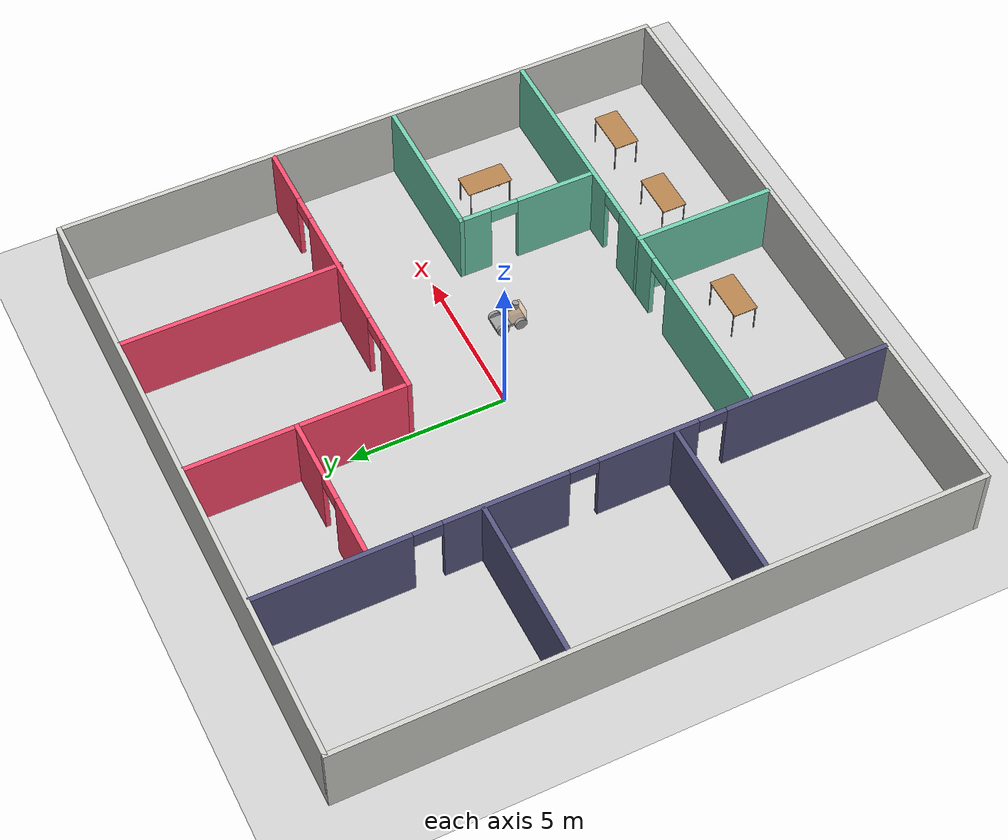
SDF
<sdf version="1.6">
 <world name="default">
  <model name="ground_plane">
   <static>1</static>
   <link name="link">
    <collision name="collision">
     <geometry><plane><normal>0 0 1</normal><size>100 100</size></plane></geometry>
     <surface>
      <contact><collide_bitmask>65535</collide_bitmask></contact>
      <friction><ode><mu>100</mu><mu2>50</mu2></ode></friction>
     </surface>
    </collision>
    <visual name="visual">
     <cast_shadows>0</cast_shadows>
     <geometry><plane><normal>0 0 1</normal><size>100 100</size></plane></geometry>
     <material>
      <script><uri>file://media/materials/scripts/gazebo.material</uri><name>Gazebo/Grey</name></script>
     </material>
    </visual>
   </link>
  </model>
  <model name="building">
   <link name="Wall_0">
    <collision name="Wall_0_Collision">
     <geometry><box><size>20.15 0.15 2.5</size></box></geometry>
     <pose>0 0 1.25 0 -0 0</pose>
    </collision>
    <visual name="Wall_0_Visual">
     <pose>0 0 1.25 0 -0 0</pose>
     <geometry><box><size>20.15 0.15 2.5</size></box></geometry>
     <material>
      <script><uri>file://media/materials/scripts/gazebo.material</uri><name>Gazebo/CeilingTiled</name></script>
      <ambient>1 1 1 1</ambient>
     </material>
     <meta><layer>0</layer></meta>
    </visual>
    <pose>0 -10 0 0 -0 0</pose>
   </link>
   <link name="Wall_11">
    <collision name="Wall_11_Collision">
     <geometry><box><size>4.55 0.15 2.5</size></box></geometry>
     <pose>0 0 1.25 0 -0 0</pose>
    </collision>
    <visual name="Wall_11_Visual">
     <pose>0 0 1.25 0 -0 0</pose>
     <geometry><box><size>4.55 0.15 2.5</size></box></geometry>
     <material>
      <script><uri>file://media/materials/scripts/gazebo.material</uri><name>Gazebo/Grey</name></script>
      <ambient>0.435294 0.796078 0.67451 1</ambient>
     </material>
     <meta><layer>0</layer></meta>
    </visual>
    <pose>2 -7.7 0 0 0 -1.5708</pose>
   </link>
   <link name="Wall_13">
    <pose>-2.35 6.5 0 0 -0 0</pose>
    <visual name="Wall_13_Visual_0">
     <pose>-1.42755 0 1.25 0 -0 0</pose>
     <geometry><box><size>1.99489 0.15 2.5</size></box></geometry>
     <material>
      <script><uri>file://media/materials/scripts/gazebo.material</uri><name>Gazebo/Grey</name></script>
      <ambient>1 0.290196 0.419608 1</ambient>
     </material>
     <meta><layer>0</layer></meta>
    </visual>
    <collision name="Wall_13_Collision_0">
     <geometry><box><size>1.99489 0.15 2.5</size></box></geometry>
     <pose>-1.42755 0 1.25 0 -0 0</pose>
    </collision>
    <visual name="Wall_13_Visual_1">
     <pose>1.44745 0 1.25 0 -0 0</pose>
     <geometry><box><size>1.95511 0.15 2.5</size></box></geometry>
     <material>
      <script><uri>file://media/materials/scripts/gazebo.material</uri><name>Gazebo/Grey</name></script>
      <ambient>1 0.290196 0.419608 1</ambient>
     </material>
     <meta><layer>0</layer></meta>
    </visual>
    <collision name="Wall_13_Collision_1">
     <geometry><box><size>1.95511 0.15 2.5</size></box></geometry>
     <pose>1.44745 0 1.25 0 -0 0</pose>
    </collision>
    <visual name="Wall_13_Visual_2">
     <pose>0.019894 0 2.25 0 -0 0</pose>
     <geometry><box><size>0.9 0.15 0.5</size></box></geometry>
     <material>
      <script><uri>file://media/materials/scripts/gazebo.material</uri><name>Gazebo/Grey</name></script>
      <ambient>1 0.290196 0.419608 1</ambient>
     </material>
     <meta><layer>0</layer></meta>
    </visual>
    <collision name="Wall_13_Collision_2">
     <geometry><box><size>0.9 0.15 0.5</size></box></geometry>
     <pose>0.019894 0 2.25 0 -0 0</pose>
    </collision>
   </link>
   <link name="Wall_19">
    <collision name="Wall_19_Collision">
     <geometry><box><size>7.05 0.15 2.5</size></box></geometry>
     <pose>0 0 1.25 0 -0 0</pose>
    </collision>
    <visual name="Wall_19_Visual">
     <pose>0 0 1.25 0 -0 0</pose>
     <geometry><box><size>7.05 0.15 2.5</size></box></geometry>
     <material>
      <script><uri>file://media/materials/scripts/gazebo.material</uri><name>Gazebo/Grey</name></script>
      <ambient>1 0.290196 0.419608 1</ambient>
     </material>
     <meta><layer>0</layer></meta>
    </visual>
    <pose>5 6.45 0 0 -0 1.5708</pose>
   </link>
   <link name="Wall_2">
    <collision name="Wall_2_Collision">
     <geometry><box><size>20.15 0.15 2.5</size></box></geometry>
     <pose>0 0 1.25 0 -0 0</pose>
    </collision>
    <visual name="Wall_2_Visual">
     <pose>0 0 1.25 0 -0 0</pose>
     <geometry><box><size>20.15 0.15 2.5</size></box></geometry>
     <material>
      <script><uri>file://media/materials/scripts/gazebo.material</uri><name>Gazebo/CeilingTiled</name></script>
      <ambient>1 1 1 1</ambient>
     </material>
     <meta><layer>0</layer></meta>
    </visual>
    <pose>-10 0 0 0 -0 1.5708</pose>
   </link>
   <link name="Wall_21">
    <collision name="Wall_21_Collision">
     <geometry><box><size>5.15 0.15 2.5</size></box></geometry>
     <pose>0 0 1.25 0 -0 0</pose>
    </collision>
    <visual name="Wall_21_Visual">
     <pose>0 0 1.25 0 -0 0</pose>
     <geometry><box><size>5.15 0.15 2.5</size></box></geometry>
     <material>
      <script><uri>file://media/materials/scripts/gazebo.material</uri><name>Gazebo/Grey</name></script>
      <ambient>0.333333 0.333333 0.498039 1</ambient>
     </material>
     <meta><layer>0</layer></meta>
    </visual>
    <pose>-7.4 3 0 0 -0 3.14159</pose>
   </link>
   <link name="Wall_23">
    <collision name="Wall_23_Collision">
     <geometry><box><size>6.95695 0.15 2.5</size></box></geometry>
     <pose>0 0 1.25 0 -0 0</pose>
    </collision>
    <visual name="Wall_23_Visual">
     <pose>0 0 1.25 0 -0 0</pose>
     <geometry><box><size>6.95695 0.15 2.5</size></box></geometry>
     <material>
      <script><uri>file://media/materials/scripts/gazebo.material</uri><name>Gazebo/Grey</name></script>
      <ambient>1 0.290196 0.419608 1</ambient>
     </material>
     <meta><layer>0</layer></meta>
    </visual>
    <pose>0 6.49652 0 0 -0 1.5708</pose>
   </link>
   <link name="Wall_25">
    <pose>4.95 3.04652 0 0 -0 0</pose>
    <visual name="Wall_25_Visual_0">
     <pose>-4.07462 0 1.25 0 -0 0</pose>
     <geometry><box><size>1.90076 0.15 2.5</size></box></geometry>
     <material>
      <script><uri>file://media/materials/scripts/gazebo.material</uri><name>Gazebo/Grey</name></script>
      <ambient>1 0.290196 0.419608 1</ambient>
     </material>
     <meta><layer>0</layer></meta>
    </visual>
    <collision name="Wall_25_Collision_0">
     <geometry><box><size>1.90076 0.15 2.5</size></box></geometry>
     <pose>-4.07462 0 1.25 0 -0 0</pose>
    </collision>
    <visual name="Wall_25_Visual_1">
     <pose>-0.045637 0 1.25 0 -0 0</pose>
     <geometry><box><size>4.3572 0.15 2.5</size></box></geometry>
     <material>
      <script><uri>file://media/materials/scripts/gazebo.material</uri><name>Gazebo/Grey</name></script>
      <ambient>1 0.290196 0.419608 1</ambient>
     </material>
     <meta><layer>0</layer></meta>
    </visual>
    <collision name="Wall_25_Collision_1">
     <geometry><box><size>4.3572 0.15 2.5</size></box></geometry>
     <pose>-0.045637 0 1.25 0 -0 0</pose>
    </collision>
    <visual name="Wall_25_Visual_2">
     <pose>4.02898 0 1.25 0 -0 0</pose>
     <geometry><box><size>1.99204 0.15 2.5</size></box></geometry>
     <material>
      <script><uri>file://media/materials/scripts/gazebo.material</uri><name>Gazebo/Grey</name></script>
      <ambient>1 0.290196 0.419608 1</ambient>
     </material>
     <meta><layer>0</layer></meta>
    </visual>
    <collision name="Wall_25_Collision_2">
     <geometry><box><size>1.99204 0.15 2.5</size></box></geometry>
     <pose>4.02898 0 1.25 0 -0 0</pose>
    </collision>
    <visual name="Wall_25_Visual_3">
     <pose>-2.67424 0 2.25 0 -0 0</pose>
     <geometry><box><size>0.9 0.15 0.5</size></box></geometry>
     <material>
      <script><uri>file://media/materials/scripts/gazebo.material</uri><name>Gazebo/Grey</name></script>
      <ambient>1 0.290196 0.419608 1</ambient>
     </material>
     <meta><layer>0</layer></meta>
    </visual>
    <collision name="Wall_25_Collision_3">
     <geometry><box><size>0.9 0.15 0.5</size></box></geometry>
     <pose>-2.67424 0 2.25 0 -0 0</pose>
    </collision>
    <visual name="Wall_25_Visual_4">
     <pose>2.58296 0 2.25 0 -0 0</pose>
     <geometry><box><size>0.9 0.15 0.5</size></box></geometry>
     <material>
      <script><uri>file://media/materials/scripts/gazebo.material</uri><name>Gazebo/Grey</name></script>
      <ambient>1 0.290196 0.419608 1</ambient>
     </material>
     <meta><layer>0</layer></meta>
    </visual>
    <collision name="Wall_25_Collision_4">
     <geometry><box><size>0.9 0.15 0.5</size></box></geometry>
     <pose>2.58296 0 2.25 0 -0 0</pose>
    </collision>
   </link>
   <link name="Wall_27">
    <pose>5 -3.25 0 0 0 -1.5708</pose>
    <visual name="Wall_27_Visual_0">
     <pose>-1.79644 0 1.25 0 -0 0</pose>
     <geometry><box><size>1.05711 0.15 2.5</size></box></geometry>
     <material>
      <script><uri>file://media/materials/scripts/gazebo.material</uri><name>Gazebo/Grey</name></script>
      <ambient>0.435294 0.796078 0.67451 1</ambient>
     </material>
     <meta><layer>0</layer></meta>
    </visual>
    <collision name="Wall_27_Collision_0">
     <geometry><box><size>1.05711 0.15 2.5</size></box></geometry>
     <pose>-1.79644 0 1.25 0 -0 0</pose>
    </collision>
    <visual name="Wall_27_Visual_1">
     <pose>0.978556 0 1.25 0 -0 0</pose>
     <geometry><box><size>2.69289 0.15 2.5</size></box></geometry>
     <material>
      <script><uri>file://media/materials/scripts/gazebo.material</uri><name>Gazebo/Grey</name></script>
      <ambient>0.435294 0.796078 0.67451 1</ambient>
     </material>
     <meta><layer>0</layer></meta>
    </visual>
    <collision name="Wall_27_Collision_1">
     <geometry><box><size>2.69289 0.15 2.5</size></box></geometry>
     <pose>0.978556 0 1.25 0 -0 0</pose>
    </collision>
    <visual name="Wall_27_Visual_2">
     <pose>-0.817888 0 2.25 0 -0 0</pose>
     <geometry><box><size>0.9 0.15 0.5</size></box></geometry>
     <material>
      <script><uri>file://media/materials/scripts/gazebo.material</uri><name>Gazebo/Grey</name></script>
      <ambient>0.435294 0.796078 0.67451 1</ambient>
     </material>
     <meta><layer>0</layer></meta>
    </visual>
    <collision name="Wall_27_Collision_2">
     <geometry><box><size>0.9 0.15 0.5</size></box></geometry>
     <pose>-0.817888 0 2.25 0 -0 0</pose>
    </collision>
   </link>
   <link name="Wall_29">
    <collision name="Wall_29_Collision">
     <geometry><box><size>5.05 0.15 2.5</size></box></geometry>
     <pose>0 0 1.25 0 -0 0</pose>
    </collision>
    <visual name="Wall_29_Visual">
     <pose>0 0 1.25 0 -0 0</pose>
     <geometry><box><size>5.05 0.15 2.5</size></box></geometry>
     <material>
      <script><uri>file://media/materials/scripts/gazebo.material</uri><name>Gazebo/Grey</name></script>
      <ambient>0.435294 0.796078 0.67451 1</ambient>
     </material>
     <meta><layer>0</layer></meta>
    </visual>
    <pose>7.45 -1 0 0 -0 0</pose>
   </link>
   <link name="Wall_3">
    <collision name="Wall_3_Collision">
     <geometry><box><size>20.15 0.15 2.5</size></box></geometry>
     <pose>0 0 1.25 0 -0 0</pose>
    </collision>
    <visual name="Wall_3_Visual">
     <pose>0 0 1.25 0 -0 0</pose>
     <geometry><box><size>20.15 0.15 2.5</size></box></geometry>
     <material>
      <script><uri>file://media/materials/scripts/gazebo.material</uri><name>Gazebo/CeilingTiled</name></script>
      <ambient>1 1 1 1</ambient>
     </material>
     <meta><layer>0</layer></meta>
    </visual>
    <pose>0 10 0 0 -0 0</pose>
   </link>
   <link name="Wall_31">
    <collision name="Wall_31_Collision">
     <geometry><box><size>5.15 0.15 2.5</size></box></geometry>
     <pose>0 0 1.25 0 -0 0</pose>
    </collision>
    <visual name="Wall_31_Visual">
     <pose>0 0 1.25 0 -0 0</pose>
     <geometry><box><size>5.15 0.15 2.5</size></box></geometry>
     <material>
      <script><uri>file://media/materials/scripts/gazebo.material</uri><name>Gazebo/Grey</name></script>
      <ambient>0.333333 0.333333 0.498039 1</ambient>
     </material>
     <meta><layer>0</layer></meta>
    </visual>
    <pose>-7.4 -3 0 0 -0 3.14159</pose>
   </link>
   <link name="Wall_4">
    <collision name="Wall_4_Collision">
     <geometry><box><size>20.15 0.15 2.5</size></box></geometry>
     <pose>0 0 1.25 0 -0 0</pose>
    </collision>
    <visual name="Wall_4_Visual">
     <pose>0 0 1.25 0 -0 0</pose>
     <geometry><box><size>20.15 0.15 2.5</size></box></geometry>
     <material>
      <script><uri>file://media/materials/scripts/gazebo.material</uri><name>Gazebo/CeilingTiled</name></script>
      <ambient>1 1 1 1</ambient>
     </material>
     <meta><layer>0</layer></meta>
    </visual>
    <pose>10 0 0 0 0 -1.5708</pose>
   </link>
   <link name="Wall_6">
    <pose>-4.8 0 0 0 -0 1.5708</pose>
    <visual name="Wall_6_Visual_0">
     <pose>-7.31251 0 1.25 0 -0 0</pose>
     <geometry><box><size>5.32498 0.15 2.5</size></box></geometry>
     <material>
      <script><uri>file://media/materials/scripts/gazebo.material</uri><name>Gazebo/Grey</name></script>
      <ambient>0.333333 0.333333 0.498039 1</ambient>
     </material>
     <meta><layer>0</layer></meta>
    </visual>
    <collision name="Wall_6_Collision_0">
     <geometry><box><size>5.32498 0.15 2.5</size></box></geometry>
     <pose>-7.31251 0 1.25 0 -0 0</pose>
    </collision>
    <visual name="Wall_6_Visual_1">
     <pose>-2.15297 0 1.25 0 -0 0</pose>
     <geometry><box><size>3.1941 0.15 2.5</size></box></geometry>
     <material>
      <script><uri>file://media/materials/scripts/gazebo.material</uri><name>Gazebo/Grey</name></script>
      <ambient>0.333333 0.333333 0.498039 1</ambient>
     </material>
     <meta><layer>0</layer></meta>
    </visual>
    <collision name="Wall_6_Collision_1">
     <geometry><box><size>3.1941 0.15 2.5</size></box></geometry>
     <pose>-2.15297 0 1.25 0 -0 0</pose>
    </collision>
    <visual name="Wall_6_Visual_2">
     <pose>2.29006 0 1.25 0 -0 0</pose>
     <geometry><box><size>3.89196 0.15 2.5</size></box></geometry>
     <material>
      <script><uri>file://media/materials/scripts/gazebo.material</uri><name>Gazebo/Grey</name></script>
      <ambient>0.333333 0.333333 0.498039 1</ambient>
     </material>
     <meta><layer>0</layer></meta>
    </visual>
    <collision name="Wall_6_Collision_2">
     <geometry><box><size>3.89196 0.15 2.5</size></box></geometry>
     <pose>2.29006 0 1.25 0 -0 0</pose>
    </collision>
    <visual name="Wall_6_Visual_3">
     <pose>7.55552 0 1.25 0 -0 0</pose>
     <geometry><box><size>4.83895 0.15 2.5</size></box></geometry>
     <material>
      <script><uri>file://media/materials/scripts/gazebo.material</uri><name>Gazebo/Grey</name></script>
      <ambient>0.333333 0.333333 0.498039 1</ambient>
     </material>
     <meta><layer>0</layer></meta>
    </visual>
    <collision name="Wall_6_Collision_3">
     <geometry><box><size>4.83895 0.15 2.5</size></box></geometry>
     <pose>7.55552 0 1.25 0 -0 0</pose>
    </collision>
    <visual name="Wall_6_Visual_4">
     <pose>-4.20002 0 2.25 0 -0 0</pose>
     <geometry><box><size>0.9 0.15 0.5</size></box></geometry>
     <material>
      <script><uri>file://media/materials/scripts/gazebo.material</uri><name>Gazebo/Grey</name></script>
      <ambient>0.333333 0.333333 0.498039 1</ambient>
     </material>
     <meta><layer>0</layer></meta>
    </visual>
    <collision name="Wall_6_Collision_4">
     <geometry><box><size>0.9 0.15 0.5</size></box></geometry>
     <pose>-4.20002 0 2.25 0 -0 0</pose>
    </collision>
    <visual name="Wall_6_Visual_5">
     <pose>-0.105917 0 2.25 0 -0 0</pose>
     <geometry><box><size>0.9 0.15 0.5</size></box></geometry>
     <material>
      <script><uri>file://media/materials/scripts/gazebo.material</uri><name>Gazebo/Grey</name></script>
      <ambient>0.333333 0.333333 0.498039 1</ambient>
     </material>
     <meta><layer>0</layer></meta>
    </visual>
    <collision name="Wall_6_Collision_5">
     <geometry><box><size>0.9 0.15 0.5</size></box></geometry>
     <pose>-0.105917 0 2.25 0 -0 0</pose>
    </collision>
    <visual name="Wall_6_Visual_6">
     <pose>4.68605 0 2.25 0 -0 0</pose>
     <geometry><box><size>0.9 0.15 0.5</size></box></geometry>
     <material>
      <script><uri>file://media/materials/scripts/gazebo.material</uri><name>Gazebo/Grey</name></script>
      <ambient>0.333333 0.333333 0.498039 1</ambient>
     </material>
     <meta><layer>0</layer></meta>
    </visual>
    <collision name="Wall_6_Collision_6">
     <geometry><box><size>0.9 0.15 0.5</size></box></geometry>
     <pose>4.68605 0 2.25 0 -0 0</pose>
    </collision>
   </link>
   <link name="Wall_8">
    <pose>2.6 -5.5 0 0 -0 0</pose>
    <visual name="Wall_8_Visual_0">
     <pose>-4.88879 0 1.25 0 -0 0</pose>
     <geometry><box><size>4.97243 0.15 2.5</size></box></geometry>
     <material>
      <script><uri>file://media/materials/scripts/gazebo.material</uri><name>Gazebo/Grey</name></script>
      <ambient>0.435294 0.796078 0.67451 1</ambient>
     </material>
     <meta><layer>0</layer></meta>
    </visual>
    <collision name="Wall_8_Collision_0">
     <geometry><box><size>4.97243 0.15 2.5</size></box></geometry>
     <pose>-4.88879 0 1.25 0 -0 0</pose>
    </collision>
    <visual name="Wall_8_Visual_1">
     <pose>-0.46381 0 1.25 0 -0 0</pose>
     <geometry><box><size>2.07753 0.15 2.5</size></box></geometry>
     <material>
      <script><uri>file://media/materials/scripts/gazebo.material</uri><name>Gazebo/Grey</name></script>
      <ambient>0.435294 0.796078 0.67451 1</ambient>
     </material>
     <meta><layer>0</layer></meta>
    </visual>
    <collision name="Wall_8_Collision_1">
     <geometry><box><size>2.07753 0.15 2.5</size></box></geometry>
     <pose>-0.46381 0 1.25 0 -0 0</pose>
    </collision>
    <visual name="Wall_8_Visual_2">
     <pose>4.42498 0 1.25 0 -0 0</pose>
     <geometry><box><size>5.90005 0.15 2.5</size></box></geometry>
     <material>
      <script><uri>file://media/materials/scripts/gazebo.material</uri><name>Gazebo/Grey</name></script>
      <ambient>0.435294 0.796078 0.67451 1</ambient>
     </material>
     <meta><layer>0</layer></meta>
    </visual>
    <collision name="Wall_8_Collision_2">
     <geometry><box><size>5.90005 0.15 2.5</size></box></geometry>
     <pose>4.42498 0 1.25 0 -0 0</pose>
    </collision>
    <visual name="Wall_8_Visual_3">
     <pose>-1.95257 0 2.25 0 -0 0</pose>
     <geometry><box><size>0.9 0.15 0.5</size></box></geometry>
     <material>
      <script><uri>file://media/materials/scripts/gazebo.material</uri><name>Gazebo/Grey</name></script>
      <ambient>0.435294 0.796078 0.67451 1</ambient>
     </material>
     <meta><layer>0</layer></meta>
    </visual>
    <collision name="Wall_8_Collision_3">
     <geometry><box><size>0.9 0.15 0.5</size></box></geometry>
     <pose>-1.95257 0 2.25 0 -0 0</pose>
    </collision>
    <visual name="Wall_8_Visual_4">
     <pose>1.02496 0 2.25 0 -0 0</pose>
     <geometry><box><size>0.9 0.15 0.5</size></box></geometry>
     <material>
      <script><uri>file://media/materials/scripts/gazebo.material</uri><name>Gazebo/Grey</name></script>
      <ambient>0.435294 0.796078 0.67451 1</ambient>
     </material>
     <meta><layer>0</layer></meta>
    </visual>
    <collision name="Wall_8_Collision_4">
     <geometry><box><size>0.9 0.15 0.5</size></box></geometry>
     <pose>1.02496 0 2.25 0 -0 0</pose>
    </collision>
   </link>
   <static>1</static>
  </model>
  <model name="table_clone">
   <static>1</static>
   <link name="link">
    <collision name="surface">
     <pose>0 0 1 0 -0 0</pose>
     <geometry><box><size>1.5 0.8 0.03</size></box></geometry>
     <surface><friction><ode><mu>0.6</mu><mu2>0.6</mu2></ode></friction></surface>
    </collision>
    <visual name="visual1">
     <pose>0 0 1 0 -0 0</pose>
     <geometry><box><size>1.5 0.8 0.03</size></box></geometry>
     <material>
      <script><uri>file://media/materials/scripts/gazebo.material</uri><name>Gazebo/Wood</name></script>
     </material>
    </visual>
    <collision name="front_left_leg">
     <pose>0.68 0.38 0.5 0 -0 0</pose>
     <geometry><cylinder><radius>0.02</radius><length>1</length></cylinder></geometry>
    </collision>
    <visual name="front_left_leg">
     <pose>0.68 0.38 0.5 0 -0 0</pose>
     <geometry><cylinder><radius>0.02</radius><length>1</length></cylinder></geometry>
     <material>
      <script><uri>file://media/materials/scripts/gazebo.material</uri><name>Gazebo/Grey</name></script>
     </material>
    </visual>
    <collision name="front_right_leg">
     <pose>0.68 -0.38 0.5 0 -0 0</pose>
     <geometry><cylinder><radius>0.02</radius><length>1</length></cylinder></geometry>
    </collision>
    <visual name="front_right_leg">
     <pose>0.68 -0.38 0.5 0 -0 0</pose>
     <geometry><cylinder><radius>0.02</radius><length>1</length></cylinder></geometry>
     <material>
      <script><uri>file://media/materials/scripts/gazebo.material</uri><name>Gazebo/Grey</name></script>
     </material>
    </visual>
    <collision name="back_right_leg">
     <pose>-0.68 -0.38 0.5 0 -0 0</pose>
     <geometry><cylinder><radius>0.02</radius><length>1</length></cylinder></geometry>
    </collision>
    <visual name="back_right_leg">
     <pose>-0.68 -0.38 0.5 0 -0 0</pose>
     <geometry><cylinder><radius>0.02</radius><length>1</length></cylinder></geometry>
     <material>
      <script><uri>file://media/materials/scripts/gazebo.material</uri><name>Gazebo/Grey</name></script>
     </material>
    </visual>
    <collision name="back_left_leg">
     <pose>-0.68 0.38 0.5 0 -0 0</pose>
     <geometry><cylinder><radius>0.02</radius><length>1</length></cylinder></geometry>
    </collision>
    <visual name="back_left_leg">
     <pose>-0.68 0.38 0.5 0 -0 0</pose>
     <geometry><cylinder><radius>0.02</radius><length>1</length></cylinder></geometry>
     <material>
      <script><uri>file://media/materials/scripts/gazebo.material</uri><name>Gazebo/Grey</name></script>
     </material>
    </visual>
   </link>
   <pose>-0.143006 -7.64818 0 0 -0 0</pose>
  </model>
  <model name="table_clone_0">
   <static>1</static>
   <link name="link">
    <collision name="surface">
     <pose>0 0 1 0 -0 0</pose>
     <geometry><box><size>1.5 0.8 0.03</size></box></geometry>
     <surface><friction><ode><mu>0.6</mu><mu2>0.6</mu2></ode></friction></surface>
    </collision>
    <visual name="visual1">
     <pose>0 0 1 0 -0 0</pose>
     <geometry><box><size>1.5 0.8 0.03</size></box></geometry>
     <material>
      <script><uri>file://media/materials/scripts/gazebo.material</uri><name>Gazebo/Wood</name></script>
     </material>
    </visual>
    <collision name="front_left_leg">
     <pose>0.68 0.38 0.5 0 -0 0</pose>
     <geometry><cylinder><radius>0.02</radius><length>1</length></cylinder></geometry>
    </collision>
    <visual name="front_left_leg">
     <pose>0.68 0.38 0.5 0 -0 0</pose>
     <geometry><cylinder><radius>0.02</radius><length>1</length></cylinder></geometry>
     <material>
      <script><uri>file://media/materials/scripts/gazebo.material</uri><name>Gazebo/Grey</name></script>
     </material>
    </visual>
    <collision name="front_right_leg">
     <pose>0.68 -0.38 0.5 0 -0 0</pose>
     <geometry><cylinder><radius>0.02</radius><length>1</length></cylinder></geometry>
    </collision>
    <visual name="front_right_leg">
     <pose>0.68 -0.38 0.5 0 -0 0</pose>
     <geometry><cylinder><radius>0.02</radius><length>1</length></cylinder></geometry>
     <material>
      <script><uri>file://media/materials/scripts/gazebo.material</uri><name>Gazebo/Grey</name></script>
     </material>
    </visual>
    <collision name="back_right_leg">
     <pose>-0.68 -0.38 0.5 0 -0 0</pose>
     <geometry><cylinder><radius>0.02</radius><length>1</length></cylinder></geometry>
    </collision>
    <visual name="back_right_leg">
     <pose>-0.68 -0.38 0.5 0 -0 0</pose>
     <geometry><cylinder><radius>0.02</radius><length>1</length></cylinder></geometry>
     <material>
      <script><uri>file://media/materials/scripts/gazebo.material</uri><name>Gazebo/Grey</name></script>
     </material>
    </visual>
    <collision name="back_left_leg">
     <pose>-0.68 0.38 0.5 0 -0 0</pose>
     <geometry><cylinder><radius>0.02</radius><length>1</length></cylinder></geometry>
    </collision>
    <visual name="back_left_leg">
     <pose>-0.68 0.38 0.5 0 -0 0</pose>
     <geometry><cylinder><radius>0.02</radius><length>1</length></cylinder></geometry>
     <material>
      <script><uri>file://media/materials/scripts/gazebo.material</uri><name>Gazebo/Grey</name></script>
     </material>
    </visual>
   </link>
   <pose>4.49827 -7.74923 0 0 -0 0</pose>
  </model>
  <model name="table_clone_1">
   <static>1</static>
   <link name="link">
    <collision name="surface">
     <pose>0 0 1 0 -0 0</pose>
     <geometry><box><size>1.5 0.8 0.03</size></box></geometry>
     <surface><friction><ode><mu>0.6</mu><mu2>0.6</mu2></ode></friction></surface>
    </collision>
    <visual name="visual1">
     <pose>0 0 1 0 -0 0</pose>
     <geometry><box><size>1.5 0.8 0.03</size></box></geometry>
     <material>
      <script><uri>file://media/materials/scripts/gazebo.material</uri><name>Gazebo/Wood</name></script>
     </material>
    </visual>
    <collision name="front_left_leg">
     <pose>0.68 0.38 0.5 0 -0 0</pose>
     <geometry><cylinder><radius>0.02</radius><length>1</length></cylinder></geometry>
    </collision>
    <visual name="front_left_leg">
     <pose>0.68 0.38 0.5 0 -0 0</pose>
     <geometry><cylinder><radius>0.02</radius><length>1</length></cylinder></geometry>
     <material>
      <script><uri>file://media/materials/scripts/gazebo.material</uri><name>Gazebo/Grey</name></script>
     </material>
    </visual>
    <collision name="front_right_leg">
     <pose>0.68 -0.38 0.5 0 -0 0</pose>
     <geometry><cylinder><radius>0.02</radius><length>1</length></cylinder></geometry>
    </collision>
    <visual name="front_right_leg">
     <pose>0.68 -0.38 0.5 0 -0 0</pose>
     <geometry><cylinder><radius>0.02</radius><length>1</length></cylinder></geometry>
     <material>
      <script><uri>file://media/materials/scripts/gazebo.material</uri><name>Gazebo/Grey</name></script>
     </material>
    </visual>
    <collision name="back_right_leg">
     <pose>-0.68 -0.38 0.5 0 -0 0</pose>
     <geometry><cylinder><radius>0.02</radius><length>1</length></cylinder></geometry>
    </collision>
    <visual name="back_right_leg">
     <pose>-0.68 -0.38 0.5 0 -0 0</pose>
     <geometry><cylinder><radius>0.02</radius><length>1</length></cylinder></geometry>
     <material>
      <script><uri>file://media/materials/scripts/gazebo.material</uri><name>Gazebo/Grey</name></script>
     </material>
    </visual>
    <collision name="back_left_leg">
     <pose>-0.68 0.38 0.5 0 -0 0</pose>
     <geometry><cylinder><radius>0.02</radius><length>1</length></cylinder></geometry>
    </collision>
    <visual name="back_left_leg">
     <pose>-0.68 0.38 0.5 0 -0 0</pose>
     <geometry><cylinder><radius>0.02</radius><length>1</length></cylinder></geometry>
     <material>
      <script><uri>file://media/materials/scripts/gazebo.material</uri><name>Gazebo/Grey</name></script>
     </material>
    </visual>
   </link>
   <pose>7.56621 -7.70233 0 0 -0 0</pose>
  </model>
  <model name="table_clone_4_clone_0">
   <static>1</static>
   <link name="link">
    <collision name="surface">
     <pose>0 0 1 0 -0 0</pose>
     <geometry><box><size>1.5 0.8 0.03</size></box></geometry>
     <surface><friction><ode><mu>0.6</mu><mu2>0.6</mu2></ode></friction></surface>
    </collision>
    <visual name="visual1">
     <pose>0 0 1 0 -0 0</pose>
     <geometry><box><size>1.5 0.8 0.03</size></box></geometry>
     <material>
      <script><uri>file://media/materials/scripts/gazebo.material</uri><name>Gazebo/Wood</name></script>
     </material>
    </visual>
    <collision name="front_left_leg">
     <pose>0.68 0.38 0.5 0 -0 0</pose>
     <geometry><cylinder><radius>0.02</radius><length>1</length></cylinder></geometry>
    </collision>
    <visual name="front_left_leg">
     <pose>0.68 0.38 0.5 0 -0 0</pose>
     <geometry><cylinder><radius>0.02</radius><length>1</length></cylinder></geometry>
     <material>
      <script><uri>file://media/materials/scripts/gazebo.material</uri><name>Gazebo/Grey</name></script>
     </material>
    </visual>
    <collision name="front_right_leg">
     <pose>0.68 -0.38 0.5 0 -0 0</pose>
     <geometry><cylinder><radius>0.02</radius><length>1</length></cylinder></geometry>
    </collision>
    <visual name="front_right_leg">
     <pose>0.68 -0.38 0.5 0 -0 0</pose>
     <geometry><cylinder><radius>0.02</radius><length>1</length></cylinder></geometry>
     <material>
      <script><uri>file://media/materials/scripts/gazebo.material</uri><name>Gazebo/Grey</name></script>
     </material>
    </visual>
    <collision name="back_right_leg">
     <pose>-0.68 -0.38 0.5 0 -0 0</pose>
     <geometry><cylinder><radius>0.02</radius><length>1</length></cylinder></geometry>
    </collision>
    <visual name="back_right_leg">
     <pose>-0.68 -0.38 0.5 0 -0 0</pose>
     <geometry><cylinder><radius>0.02</radius><length>1</length></cylinder></geometry>
     <material>
      <script><uri>file://media/materials/scripts/gazebo.material</uri><name>Gazebo/Grey</name></script>
     </material>
    </visual>
    <collision name="back_left_leg">
     <pose>-0.68 0.38 0.5 0 -0 0</pose>
     <geometry><cylinder><radius>0.02</radius><length>1</length></cylinder></geometry>
    </collision>
    <visual name="back_left_leg">
     <pose>-0.68 0.38 0.5 0 -0 0</pose>
     <geometry><cylinder><radius>0.02</radius><length>1</length></cylinder></geometry>
     <material>
      <script><uri>file://media/materials/scripts/gazebo.material</uri><name>Gazebo/Grey</name></script>
     </material>
    </visual>
   </link>
   <pose>7.45404 -2.98154 0 0 -0 1.5707</pose>
  </model>
  <model name="robot_0">
   <link name="link_1">
    <pose>0.074286 0.002857 -0.114286 0 -0 0</pose>
    <inertial>
     <mass>1</mass>
     <inertia>
      <ixx>0.166667</ixx>
      <ixy>0</ixy>
      <ixz>0</ixz>
      <iyy>0.166667</iyy>
      <iyz>0</iyz>
      <izz>0.166667</izz>
     </inertia>
    </inertial>
    <visual name="visual">
     <geometry><box><size>1 0.5 0.1</size></box></geometry>
     <material>
      <lighting>1</lighting>
      <script><uri>file://media/materials/scripts/gazebo.material</uri><name>Gazebo/Grey</name></script>
      <shader type="pixel"><normal_map>__default__</normal_map></shader>
      <ambient>0 0 0 0.1</ambient>
      <diffuse>0.7 0.7 0.7 1</diffuse>
      <specular>0.01 0.01 1 1</specular>
      <emissive>0 0 0 1</emissive>
     </material>
    </visual>
    <collision name="collision">
     <geometry><box><size>1 0.5 0.1</size></box></geometry>
     <surface>
      <friction>
       <ode><mu>1</mu><mu2>1</mu2><fdir1>0 0 0</fdir1><slip1>0</slip1><slip2>0</slip2></ode>
       <torsional>
        <coefficient>1</coefficient>
        <patch_radius>0</patch_radius>
        <surface_radius>0</surface_radius>
        <use_patch_radius>1</use_patch_radius>
        <ode><slip>0</slip></ode>
       </torsional>
      </friction>
      <bounce><restitution_coefficient>0</restitution_coefficient><threshold>1e+06</threshold></bounce>
      <contact>
       <collide_without_contact>0</collide_without_contact>
       <collide_without_contact_bitmask>1</collide_without_contact_bitmask>
       <collide_bitmask>1</collide_bitmask>
       <ode>
        <soft_cfm>0</soft_cfm>
        <soft_erp>0.2</soft_erp>
        <kp>1e+13</kp>
        <kd>1</kd>
        <max_vel>0.01</max_vel>
        <min_depth>0</min_depth>
       </ode>
       <bullet>
        <split_impulse>1</split_impulse>
        <split_impulse_penetration_threshold>-0.01</split_impulse_penetration_threshold>
        <soft_cfm>0</soft_cfm>
        <soft_erp>0.2</soft_erp>
        <kp>1e+13</kp>
        <kd>1</kd>
       </bullet>
      </contact>
     </surface>
    </collision>
   </link>
   <link name="link_5">
    <pose>-0.225714 -0.297162 -0.114286 1.5707 -0 0</pose>
    <inertial>
     <mass>1</mass>
     <inertia><ixx>0.145833</ixx><ixy>0</ixy><ixz>0</ixz><iyy>0.145833</iyy><iyz>0</iyz><izz>0.125</izz></inertia>
    </inertial>
    <visual name="visual">
     <geometry><cylinder><radius>0.2</radius><length>0.1</length></cylinder></geometry>
     <material>
      <lighting>1</lighting>
      <script><uri>file://media/materials/scripts/gazebo.material</uri><name>Gazebo/Grey</name></script>
      <shader type="pixel"><normal_map>__default__</normal_map></shader>
      <ambient>0 0 0 0.5</ambient>
      <diffuse>0.7 0.7 0.7 1</diffuse>
      <specular>0.01 0.01 0.01 1</specular>
      <emissive>0 0 0 1</emissive>
     </material>
    </visual>
    <collision name="collision">
     <geometry><cylinder><radius>0.2</radius><length>0.1</length></cylinder></geometry>
     <surface>
      <friction>
       <ode><mu>1</mu><mu2>1</mu2><fdir1>0 0 0</fdir1><slip1>0</slip1><slip2>0</slip2></ode>
       <torsional>
        <coefficient>1</coefficient>
        <patch_radius>0</patch_radius>
        <surface_radius>0</surface_radius>
        <use_patch_radius>1</use_patch_radius>
        <ode><slip>0</slip></ode>
       </torsional>
      </friction>
      <bounce><restitution_coefficient>0</restitution_coefficient><threshold>1e+06</threshold></bounce>
      <contact>
       <collide_without_contact>0</collide_without_contact>
       <collide_without_contact_bitmask>1</collide_without_contact_bitmask>
       <collide_bitmask>1</collide_bitmask>
       <ode>
        <soft_cfm>0</soft_cfm>
        <soft_erp>0.2</soft_erp>
        <kp>1e+13</kp>
        <kd>1</kd>
        <max_vel>0.01</max_vel>
        <min_depth>0</min_depth>
       </ode>
       <bullet>
        <split_impulse>1</split_impulse>
        <split_impulse_penetration_threshold>-0.01</split_impulse_penetration_threshold>
        <soft_cfm>0</soft_cfm>
        <soft_erp>0.2</soft_erp>
        <kp>1e+13</kp>
        <kd>1</kd>
       </bullet>
      </contact>
     </surface>
    </collision>
   </link>
   <link name="link_5_clone">
    <pose>0.374286 -0.297162 -0.114286 1.5707 -0 0</pose>
    <inertial>
     <mass>1</mass>
     <inertia><ixx>0.145833</ixx><ixy>0</ixy><ixz>0</ixz><iyy>0.145833</iyy><iyz>0</iyz><izz>0.125</izz></inertia>
    </inertial>
    <visual name="visual">
     <geometry><cylinder><radius>0.2</radius><length>0.1</length></cylinder></geometry>
     <material>
      <lighting>1</lighting>
      <script><uri>file://media/materials/scripts/gazebo.material</uri><name>Gazebo/Grey</name></script>
      <shader type="pixel"><normal_map>__default__</normal_map></shader>
      <ambient>0 0 0 0.5</ambient>
      <diffuse>0.7 0.7 0.7 1</diffuse>
      <specular>0.01 0.01 0.01 1</specular>
      <emissive>0 0 0 1</emissive>
     </material>
    </visual>
    <collision name="collision">
     <geometry><cylinder><radius>0.2</radius><length>0.1</length></cylinder></geometry>
     <surface>
      <friction>
       <ode><mu>1</mu><mu2>1</mu2><fdir1>0 0 0</fdir1><slip1>0</slip1><slip2>0</slip2></ode>
       <torsional>
        <coefficient>1</coefficient>
        <patch_radius>0</patch_radius>
        <surface_radius>0</surface_radius>
        <use_patch_radius>1</use_patch_radius>
        <ode><slip>0</slip></ode>
       </torsional>
      </friction>
      <bounce><restitution_coefficient>0</restitution_coefficient><threshold>1e+06</threshold></bounce>
      <contact>
       <collide_without_contact>0</collide_without_contact>
       <collide_without_contact_bitmask>1</collide_without_contact_bitmask>
       <collide_bitmask>1</collide_bitmask>
       <ode>
        <soft_cfm>0</soft_cfm>
        <soft_erp>0.2</soft_erp>
        <kp>1e+13</kp>
        <kd>1</kd>
        <max_vel>0.01</max_vel>
        <min_depth>0</min_depth>
       </ode>
       <bullet>
        <split_impulse>1</split_impulse>
        <split_impulse_penetration_threshold>-0.01</split_impulse_penetration_threshold>
        <soft_cfm>0</soft_cfm>
        <soft_erp>0.2</soft_erp>
        <kp>1e+13</kp>
        <kd>1</kd>
       </bullet>
      </contact>
     </surface>
    </collision>
   </link>
   <link name="link_5_clone_0">
    <pose>-0.225714 0.302876 -0.114286 1.5707 -0 0</pose>
    <inertial>
     <mass>1</mass>
     <inertia><ixx>0.145833</ixx><ixy>0</ixy><ixz>0</ixz><iyy>0.145833</iyy><iyz>0</iyz><izz>0.125</izz></inertia>
    </inertial>
    <visual name="visual">
     <geometry><cylinder><radius>0.2</radius><length>0.1</length></cylinder></geometry>
     <material>
      <lighting>1</lighting>
      <script><uri>file://media/materials/scripts/gazebo.material</uri><name>Gazebo/Grey</name></script>
      <shader type="pixel"><normal_map>__default__</normal_map></shader>
      <ambient>0 0 0 0.5</ambient>
      <diffuse>0.7 0.7 0.7 1</diffuse>
      <specular>0.01 0.01 0.01 1</specular>
      <emissive>0 0 0 1</emissive>
     </material>
    </visual>
    <collision name="collision">
     <geometry><cylinder><radius>0.2</radius><length>0.1</length></cylinder></geometry>
     <surface>
      <friction>
       <ode><mu>1</mu><mu2>1</mu2><fdir1>0 0 0</fdir1><slip1>0</slip1><slip2>0</slip2></ode>
       <torsional>
        <coefficient>1</coefficient>
        <patch_radius>0</patch_radius>
        <surface_radius>0</surface_radius>
        <use_patch_radius>1</use_patch_radius>
        <ode><slip>0</slip></ode>
       </torsional>
      </friction>
      <bounce><restitution_coefficient>0</restitution_coefficient><threshold>1e+06</threshold></bounce>
      <contact>
       <collide_without_contact>0</collide_without_contact>
       <collide_without_contact_bitmask>1</collide_without_contact_bitmask>
       <collide_bitmask>1</collide_bitmask>
       <ode>
        <soft_cfm>0</soft_cfm>
        <soft_erp>0.2</soft_erp>
        <kp>1e+13</kp>
        <kd>1</kd>
        <max_vel>0.01</max_vel>
        <min_depth>0</min_depth>
       </ode>
       <bullet>
        <split_impulse>1</split_impulse>
        <split_impulse_penetration_threshold>-0.01</split_impulse_penetration_threshold>
        <soft_cfm>0</soft_cfm>
        <soft_erp>0.2</soft_erp>
        <kp>1e+13</kp>
        <kd>1</kd>
       </bullet>
      </contact>
     </surface>
    </collision>
   </link>
   <link name="link_5_clone_1">
    <pose>0.374286 0.302876 -0.114286 1.5707 -0 0</pose>
    <inertial>
     <mass>1</mass>
     <inertia><ixx>0.145833</ixx><ixy>0</ixy><ixz>0</ixz><iyy>0.145833</iyy><iyz>0</iyz><izz>0.125</izz></inertia>
    </inertial>
    <visual name="visual">
     <geometry><cylinder><radius>0.2</radius><length>0.1</length></cylinder></geometry>
     <material>
      <lighting>1</lighting>
      <script><uri>file://media/materials/scripts/gazebo.material</uri><name>Gazebo/Grey</name></script>
      <shader type="pixel"><normal_map>__default__</normal_map></shader>
      <ambient>0 0 0 0.5</ambient>
      <diffuse>0.7 0.7 0.7 1</diffuse>
      <specular>0.01 0.01 0.01 1</specular>
      <emissive>0 0 0 1</emissive>
     </material>
    </visual>
    <collision name="collision">
     <geometry><cylinder><radius>0.2</radius><length>0.1</length></cylinder></geometry>
     <surface>
      <friction>
       <ode><mu>1</mu><mu2>1</mu2><fdir1>0 0 0</fdir1><slip1>0</slip1><slip2>0</slip2></ode>
       <torsional>
        <coefficient>1</coefficient>
        <patch_radius>0</patch_radius>
        <surface_radius>0</surface_radius>
        <use_patch_radius>1</use_patch_radius>
        <ode><slip>0</slip></ode>
       </torsional>
      </friction>
      <bounce><restitution_coefficient>0</restitution_coefficient><threshold>1e+06</threshold></bounce>
      <contact>
       <collide_without_contact>0</collide_without_contact>
       <collide_without_contact_bitmask>1</collide_without_contact_bitmask>
       <collide_bitmask>1</collide_bitmask>
       <ode>
        <soft_cfm>0</soft_cfm>
        <soft_erp>0.2</soft_erp>
        <kp>1e+13</kp>
        <kd>1</kd>
        <max_vel>0.01</max_vel>
        <min_depth>0</min_depth>
       </ode>
       <bullet>
        <split_impulse>1</split_impulse>
        <split_impulse_penetration_threshold>-0.01</split_impulse_penetration_threshold>
        <soft_cfm>0</soft_cfm>
        <soft_erp>0.2</soft_erp>
        <kp>1e+13</kp>
        <kd>1</kd>
       </bullet>
      </contact>
     </surface>
    </collision>
   </link>
   <link name="link_8">
    <pose>-0.175714 0.002857 0.135714 0 -0 0</pose>
    <inertial>
     <mass>1</mass>
     <inertia>
      <ixx>0.166667</ixx>
      <ixy>0</ixy>
      <ixz>0</ixz>
      <iyy>0.166667</iyy>
      <iyz>0</iyz>
      <izz>0.166667</izz>
     </inertia>
    </inertial>
    <visual name="visual">
     <geometry><box><size>0.5 0.5 0.4</size></box></geometry>
     <material>
      <lighting>1</lighting>
      <script><uri>file://media/materials/scripts/gazebo.material</uri><name>Gazebo/Grey</name></script>
      <shader type="pixel"><normal_map>__default__</normal_map></shader>
      <ambient>1 0.5 0 0.1</ambient>
      <diffuse>0.7 0.7 0.7 1</diffuse>
      <specular>0.01 0.01 0.01 1</specular>
      <emissive>0 0 0 1</emissive>
     </material>
    </visual>
    <collision name="collision">
     <geometry><box><size>0.5 0.5 0.4</size></box></geometry>
     <surface>
      <friction>
       <ode><mu>1</mu><mu2>1</mu2><fdir1>0 0 0</fdir1><slip1>0</slip1><slip2>0</slip2></ode>
       <torsional>
        <coefficient>1</coefficient>
        <patch_radius>0</patch_radius>
        <surface_radius>0</surface_radius>
        <use_patch_radius>1</use_patch_radius>
        <ode><slip>0</slip></ode>
       </torsional>
      </friction>
      <bounce><restitution_coefficient>0</restitution_coefficient><threshold>1e+06</threshold></bounce>
      <contact>
       <collide_without_contact>0</collide_without_contact>
       <collide_without_contact_bitmask>1</collide_without_contact_bitmask>
       <collide_bitmask>1</collide_bitmask>
       <ode>
        <soft_cfm>0</soft_cfm>
        <soft_erp>0.2</soft_erp>
        <kp>1e+13</kp>
        <kd>1</kd>
        <max_vel>0.01</max_vel>
        <min_depth>0</min_depth>
       </ode>
       <bullet>
        <split_impulse>1</split_impulse>
        <split_impulse_penetration_threshold>-0.01</split_impulse_penetration_threshold>
        <soft_cfm>0</soft_cfm>
        <soft_erp>0.2</soft_erp>
        <kp>1e+13</kp>
        <kd>1</kd>
       </bullet>
      </contact>
     </surface>
    </collision>
   </link>
   <link name="link_9">
    <pose>-0.195714 -0.017143 0.435714 0 -0 0</pose>
    <inertial>
     <mass>1</mass>
     <inertia><ixx>0.145833</ixx><ixy>0</ixy><ixz>0</ixz><iyy>0.145833</iyy><iyz>0</iyz><izz>0.125</izz></inertia>
    </inertial>
    <visual name="visual">
     <geometry><cylinder><radius>0.1</radius><length>0.2</length></cylinder></geometry>
     <material>
      <lighting>1</lighting>
      <script><uri>file://media/materials/scripts/gazebo.material</uri><name>Gazebo/Grey</name></script>
      <shader type="pixel"><normal_map>__default__</normal_map></shader>
      <ambient>0.5 0.5 0.5 1</ambient>
      <diffuse>1 1 1 1</diffuse>
      <specular>0.01 0.01 0.01 1</specular>
      <emissive>0 0 0 1</emissive>
     </material>
    </visual>
    <collision name="collision">
     <geometry><cylinder><radius>0.1</radius><length>0.2</length></cylinder></geometry>
     <surface>
      <friction>
       <ode><mu>1</mu><mu2>1</mu2><fdir1>0 0 0</fdir1><slip1>0</slip1><slip2>0</slip2></ode>
       <torsional>
        <coefficient>1</coefficient>
        <patch_radius>0</patch_radius>
        <surface_radius>0</surface_radius>
        <use_patch_radius>1</use_patch_radius>
        <ode><slip>0</slip></ode>
       </torsional>
      </friction>
      <bounce><restitution_coefficient>0</restitution_coefficient><threshold>1e+06</threshold></bounce>
      <contact>
       <collide_without_contact>0</collide_without_contact>
       <collide_without_contact_bitmask>1</collide_without_contact_bitmask>
       <collide_bitmask>1</collide_bitmask>
       <ode>
        <soft_cfm>0</soft_cfm>
        <soft_erp>0.2</soft_erp>
        <kp>1e+13</kp>
        <kd>1</kd>
        <max_vel>0.01</max_vel>
        <min_depth>0</min_depth>
       </ode>
       <bullet>
        <split_impulse>1</split_impulse>
        <split_impulse_penetration_threshold>-0.01</split_impulse_penetration_threshold>
        <soft_cfm>0</soft_cfm>
        <soft_erp>0.2</soft_erp>
        <kp>1e+13</kp>
        <kd>1</kd>
       </bullet>
      </contact>
     </surface>
    </collision>
   </link>
   <joint name="link_1_JOINT_3" type="revolute">
    <parent>link_1</parent>
    <child>link_5</child>
    <axis>
     <xyz>0 0 1</xyz>
     <use_parent_model_frame>0</use_parent_model_frame>
     <limit>
      <lower>-1.79769e+308</lower>
      <upper>1.79769e+308</upper>
      <effort>-1</effort>
      <velocity>-1</velocity>
     </limit>
     <dynamics>
      <spring_reference>0</spring_reference>
      <spring_stiffness>0</spring_stiffness>
      <damping>0</damping>
      <friction>0</friction>
     </dynamics>
    </axis>
    <physics>
     <ode><limit><cfm>0</cfm><erp>0.2</erp></limit><suspension><cfm>0</cfm><erp>0.2</erp></suspension></ode>
    </physics>
   </joint>
   <joint name="link_1_JOINT_4" type="revolute">
    <parent>link_1</parent>
    <child>link_5_clone</child>
    <axis>
     <xyz>0 0 1</xyz>
     <use_parent_model_frame>0</use_parent_model_frame>
     <limit>
      <lower>-1.79769e+308</lower>
      <upper>1.79769e+308</upper>
      <effort>-1</effort>
      <velocity>-1</velocity>
     </limit>
     <dynamics>
      <spring_reference>0</spring_reference>
      <spring_stiffness>0</spring_stiffness>
      <damping>0</damping>
      <friction>0</friction>
     </dynamics>
    </axis>
    <physics>
     <ode><limit><cfm>0</cfm><erp>0.2</erp></limit><suspension><cfm>0</cfm><erp>0.2</erp></suspension></ode>
    </physics>
   </joint>
   <joint name="link_1_JOINT_5" type="revolute">
    <parent>link_1</parent>
    <child>link_5_clone_0</child>
    <axis>
     <xyz>0 0 1</xyz>
     <use_parent_model_frame>0</use_parent_model_frame>
     <limit>
      <lower>-1.79769e+308</lower>
      <upper>1.79769e+308</upper>
      <effort>-1</effort>
      <velocity>-1</velocity>
     </limit>
     <dynamics>
      <spring_reference>0</spring_reference>
      <spring_stiffness>0</spring_stiffness>
      <damping>0</damping>
      <friction>0</friction>
     </dynamics>
    </axis>
    <physics>
     <ode><limit><cfm>0</cfm><erp>0.2</erp></limit><suspension><cfm>0</cfm><erp>0.2</erp></suspension></ode>
    </physics>
   </joint>
   <joint name="link_1_JOINT_7" type="revolute">
    <parent>link_1</parent>
    <child>link_5_clone_1</child>
    <axis>
     <xyz>0 0 1</xyz>
     <use_parent_model_frame>0</use_parent_model_frame>
     <limit>
      <lower>-1.79769e+308</lower>
      <upper>1.79769e+308</upper>
      <effort>-1</effort>
      <velocity>-1</velocity>
     </limit>
     <dynamics>
      <spring_reference>0</spring_reference>
      <spring_stiffness>0</spring_stiffness>
      <damping>0</damping>
      <friction>0</friction>
     </dynamics>
    </axis>
    <physics>
     <ode><limit><cfm>0</cfm><erp>0.2</erp></limit><suspension><cfm>0</cfm><erp>0.2</erp></suspension></ode>
    </physics>
   </joint>
   <joint name="link_1_JOINT_9" type="fixed">
    <parent>link_1</parent>
    <child>link_8</child>
    <physics>
     <ode><limit><cfm>0</cfm><erp>0.2</erp></limit><suspension><cfm>0</cfm><erp>0.2</erp></suspension></ode>
    </physics>
   </joint>
   <joint name="link_8_JOINT_11" type="revolute">
    <parent>link_8</parent>
    <child>link_9</child>
    <axis>
     <xyz>0 0 1</xyz>
     <use_parent_model_frame>0</use_parent_model_frame>
     <limit>
      <lower>-1.79769e+308</lower>
      <upper>1.79769e+308</upper>
      <effort>-1</effort>
      <velocity>-1</velocity>
     </limit>
     <dynamics>
      <spring_reference>0</spring_reference>
      <spring_stiffness>0</spring_stiffness>
      <damping>0</damping>
      <friction>0</friction>
     </dynamics>
    </axis>
    <physics>
     <ode><limit><cfm>0</cfm><erp>0.2</erp></limit><suspension><cfm>0</cfm><erp>0.2</erp></suspension></ode>
    </physics>
   </joint>
   <static>0</static>
   <pose>2.59565 -1.46195 0.314291 2e-06 -2e-06 1.57061</pose>
  </model>
 </world>
</sdf>
